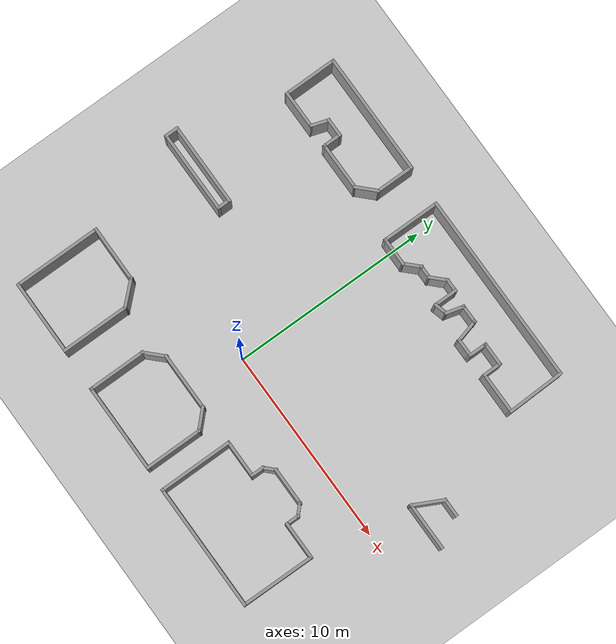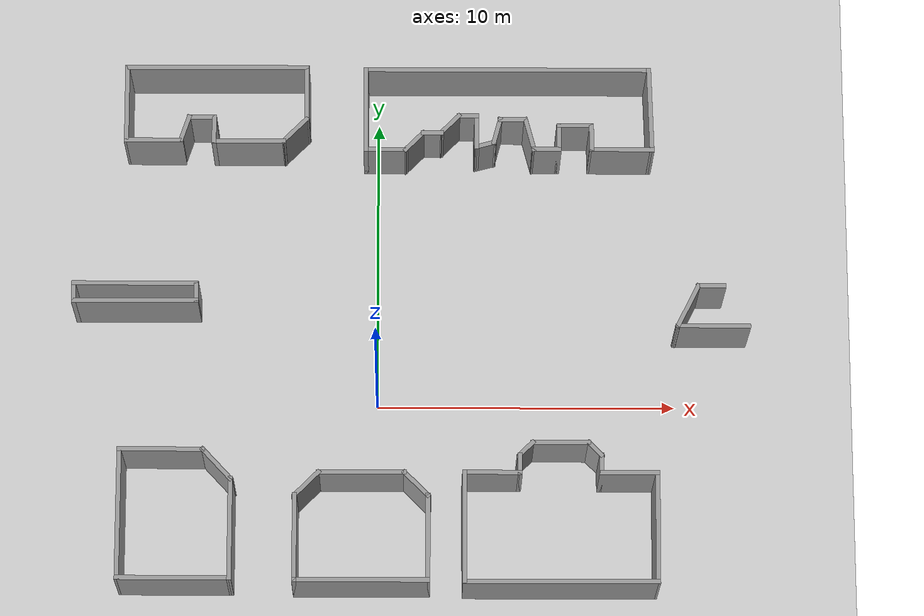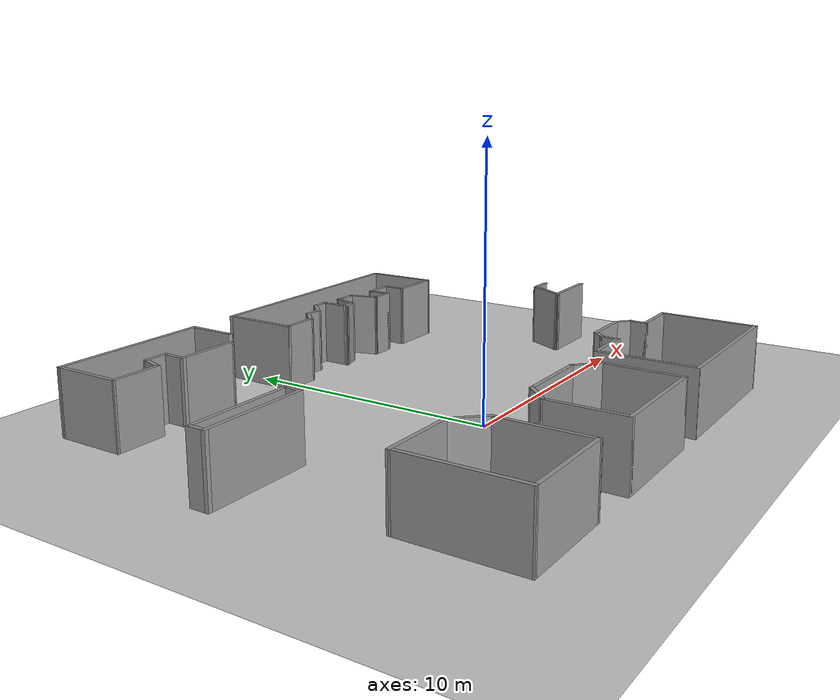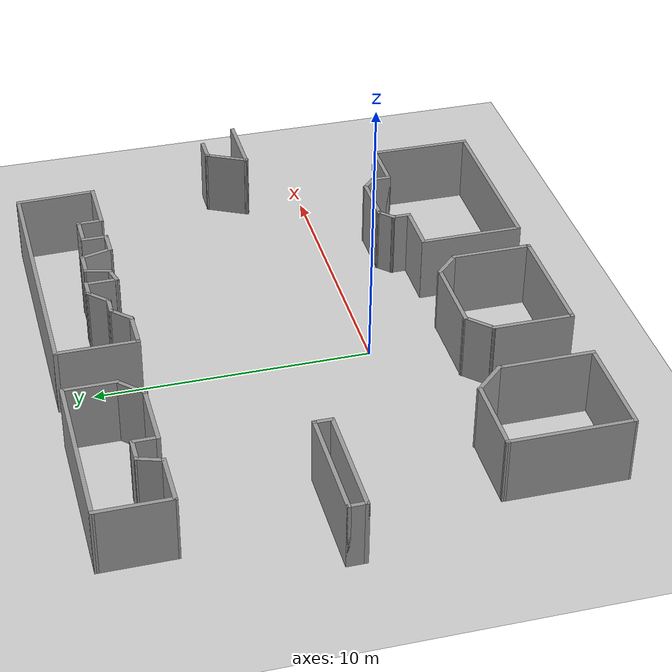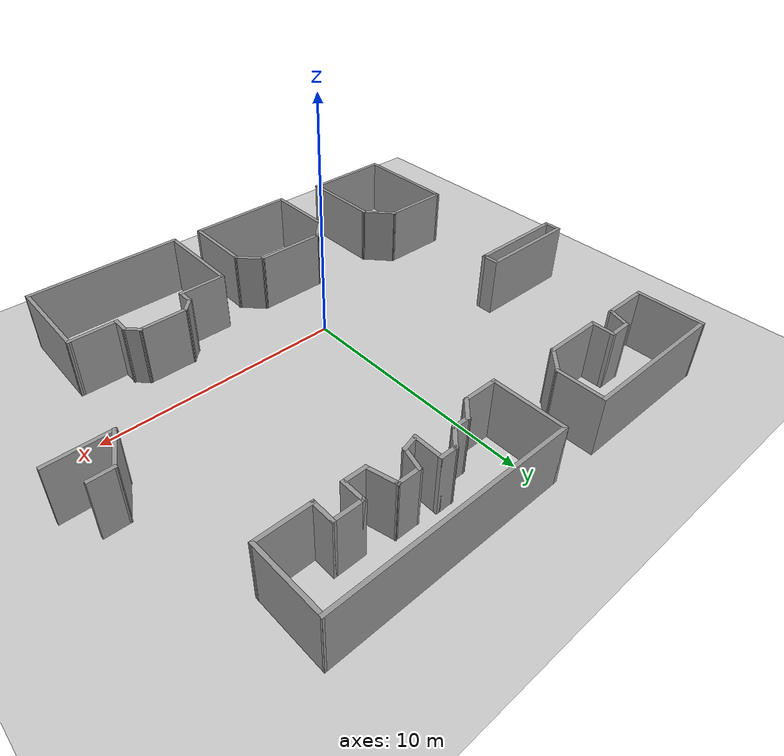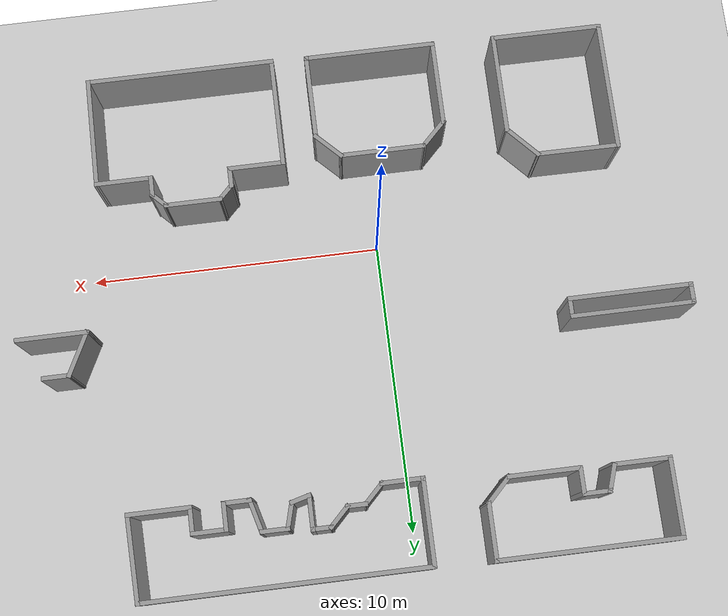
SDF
<sdf version="1.6">
 <world name="default">
  <model name="ground_plane">
   <static>1</static>
   <link name="link">
    <collision name="collision">
     <geometry><plane><normal>0 0 1</normal><size>100 100</size></plane></geometry>
     <surface><friction><ode><mu>100</mu><mu2>50</mu2></ode></friction></surface>
    </collision>
    <visual name="visual">
     <cast_shadows>0</cast_shadows>
     <geometry><plane><normal>0 0 1</normal><size>100 100</size></plane></geometry>
     <material>
      <script><uri>file://media/materials/scripts/gazebo.material</uri><name>Gazebo/Grey</name></script>
     </material>
    </visual>
   </link>
  </model>
  <model name="corridor1">
   <pose>-0.71562 2.39478 0 0 -0 0</pose>
   <link name="Wall_135">
    <collision name="Wall_135_Collision">
     <geometry><box><size>6.25 0.15 2.5</size></box></geometry>
     <pose>0 0 1.25 0 -0 0</pose>
    </collision>
    <visual name="Wall_135_Visual">
     <pose>0 0 1.25 0 -0 0</pose>
     <geometry><box><size>6.25 0.15 2.5</size></box></geometry>
     <material>
      <script><uri>file://media/materials/scripts/gazebo.material</uri><name>Gazebo/Grey</name></script>
      <ambient>1 1 1 1</ambient>
     </material>
     <meta><layer>0</layer></meta>
    </visual>
    <pose>-4.78429 8.90432 0 0 -0 0</pose>
   </link>
   <link name="Wall_138">
    <collision name="Wall_138_Collision">
     <geometry><box><size>2 0.15 2.5</size></box></geometry>
     <pose>0 0 1.25 0 -0 0</pose>
    </collision>
    <visual name="Wall_138_Visual">
     <pose>0 0 1.25 0 -0 0</pose>
     <geometry><box><size>2 0.15 2.5</size></box></geometry>
     <material>
      <script><uri>file://media/materials/scripts/gazebo.material</uri><name>Gazebo/Grey</name></script>
      <ambient>1 1 1 1</ambient>
     </material>
     <meta><layer>0</layer></meta>
    </visual>
    <pose>-1.73429 7.97931 0 0 0 -1.5708</pose>
   </link>
   <link name="Wall_139">
    <collision name="Wall_139_Collision">
     <geometry><box><size>1.25 0.15 2.5</size></box></geometry>
     <pose>0 0 1.25 0 -0 0</pose>
    </collision>
    <visual name="Wall_139_Visual">
     <pose>0 0 1.25 0 -0 0</pose>
     <geometry><box><size>1.25 0.15 2.5</size></box></geometry>
     <material>
      <script><uri>file://media/materials/scripts/gazebo.material</uri><name>Gazebo/Grey</name></script>
      <ambient>1 1 1 1</ambient>
     </material>
     <meta><layer>0</layer></meta>
    </visual>
    <pose>-2.1232 6.66541 0 0 0 -2.35619</pose>
   </link>
   <link name="Wall_140">
    <collision name="Wall_140_Collision">
     <geometry><box><size>2.5 0.15 2.5</size></box></geometry>
     <pose>0 0 1.25 0 -0 0</pose>
    </collision>
    <visual name="Wall_140_Visual">
     <pose>0 0 1.25 0 -0 0</pose>
     <geometry><box><size>2.5 0.15 2.5</size></box></geometry>
     <material>
      <script><uri>file://media/materials/scripts/gazebo.material</uri><name>Gazebo/Grey</name></script>
      <ambient>1 1 1 1</ambient>
     </material>
     <meta><layer>0</layer></meta>
    </visual>
    <pose>-3.68711 6.2765 0 0 -0 3.14159</pose>
   </link>
   <link name="Wall_141">
    <collision name="Wall_141_Collision">
     <geometry><box><size>1 0.15 2.5</size></box></geometry>
     <pose>0 0 1.25 0 -0 0</pose>
    </collision>
    <visual name="Wall_141_Visual">
     <pose>0 0 1.25 0 -0 0</pose>
     <geometry><box><size>1 0.15 2.5</size></box></geometry>
     <material>
      <script><uri>file://media/materials/scripts/gazebo.material</uri><name>Gazebo/Grey</name></script>
      <ambient>1 1 1 1</ambient>
     </material>
     <meta><layer>0</layer></meta>
    </visual>
    <pose>-4.86211 6.7015 0 0 -0 1.5708</pose>
   </link>
   <link name="Wall_142">
    <collision name="Wall_142_Collision">
     <geometry><box><size>1 0.15 2.5</size></box></geometry>
     <pose>0 0 1.25 0 -0 0</pose>
    </collision>
    <visual name="Wall_142_Visual">
     <pose>0 0 1.25 0 -0 0</pose>
     <geometry><box><size>1 0.15 2.5</size></box></geometry>
     <material>
      <script><uri>file://media/materials/scripts/gazebo.material</uri><name>Gazebo/Grey</name></script>
      <ambient>1 1 1 1</ambient>
     </material>
     <meta><layer>0</layer></meta>
    </visual>
    <pose>-5.28711 7.1265 0 0 -0 3.14159</pose>
   </link>
   <link name="Wall_143">
    <collision name="Wall_143_Collision">
     <geometry><box><size>0.989653 0.15 2.5</size></box></geometry>
     <pose>0 0 1.25 0 -0 0</pose>
    </collision>
    <visual name="Wall_143_Visual">
     <pose>0 0 1.25 0 -0 0</pose>
     <geometry><box><size>0.989653 0.15 2.5</size></box></geometry>
     <material>
      <script><uri>file://media/materials/scripts/gazebo.material</uri><name>Gazebo/Grey</name></script>
      <ambient>1 1 1 1</ambient>
     </material>
     <meta><layer>0</layer></meta>
    </visual>
    <pose>-5.84361 6.7278 0 0 0 -1.88939</pose>
   </link>
   <link name="Wall_144">
    <collision name="Wall_144_Collision">
     <geometry><box><size>2 0.15 2.5</size></box></geometry>
     <pose>0 0 1.25 0 -0 0</pose>
    </collision>
    <visual name="Wall_144_Visual">
     <pose>0 0 1.25 0 -0 0</pose>
     <geometry><box><size>2 0.15 2.5</size></box></geometry>
     <material>
      <script><uri>file://media/materials/scripts/gazebo.material</uri><name>Gazebo/Grey</name></script>
      <ambient>1 1 1 1</ambient>
     </material>
     <meta><layer>0</layer></meta>
    </visual>
    <pose>-6.90011 6.3028 0 0 -0 3.14159</pose>
   </link>
   <link name="Wall_146">
    <collision name="Wall_146_Collision">
     <geometry><box><size>2.75153 0.15 2.5</size></box></geometry>
     <pose>0 0 1.25 0 -0 0</pose>
    </collision>
    <visual name="Wall_146_Visual">
     <pose>0 0 1.25 0 -0 0</pose>
     <geometry><box><size>2.75153 0.15 2.5</size></box></geometry>
     <material>
      <script><uri>file://media/materials/scripts/gazebo.material</uri><name>Gazebo/Grey</name></script>
      <ambient>1 1 1 1</ambient>
     </material>
     <meta><layer>0</layer></meta>
    </visual>
    <pose>-7.8297 7.60356 0 0 0 -1.56727</pose>
   </link>
   <link name="Wall_148">
    <collision name="Wall_148_Collision">
     <geometry><box><size>3 0.15 2.5</size></box></geometry>
     <pose>0 0 1.25 0 -0 0</pose>
    </collision>
    <visual name="Wall_148_Visual">
     <pose>0 0 1.25 0 -0 0</pose>
     <geometry><box><size>3 0.15 2.5</size></box></geometry>
     <material>
      <script><uri>file://media/materials/scripts/gazebo.material</uri><name>Gazebo/Grey</name></script>
      <ambient>1 1 1 1</ambient>
     </material>
     <meta><layer>0</layer></meta>
    </visual>
    <pose>0.277223 7.41165 0 0 0 -1.5708</pose>
   </link>
   <link name="Wall_149">
    <collision name="Wall_149_Collision">
     <geometry><box><size>1.5 0.15 2.5</size></box></geometry>
     <pose>0 0 1.25 0 -0 0</pose>
    </collision>
    <visual name="Wall_149_Visual">
     <pose>0 0 1.25 0 -0 0</pose>
     <geometry><box><size>1.5 0.15 2.5</size></box></geometry>
     <material>
      <script><uri>file://media/materials/scripts/gazebo.material</uri><name>Gazebo/Grey</name></script>
      <ambient>1 1 1 1</ambient>
     </material>
     <meta><layer>0</layer></meta>
    </visual>
    <pose>0.952223 5.98665 0 0 -0 0</pose>
   </link>
   <link name="Wall_150">
    <collision name="Wall_150_Collision">
     <geometry><box><size>1 0.15 2.5</size></box></geometry>
     <pose>0 0 1.25 0 -0 0</pose>
    </collision>
    <visual name="Wall_150_Visual">
     <pose>0 0 1.25 0 -0 0</pose>
     <geometry><box><size>1 0.15 2.5</size></box></geometry>
     <material>
      <script><uri>file://media/materials/scripts/gazebo.material</uri><name>Gazebo/Grey</name></script>
      <ambient>1 1 1 1</ambient>
     </material>
     <meta><layer>0</layer></meta>
    </visual>
    <pose>1.92774 6.28718 0 0 -0 0.785398</pose>
   </link>
   <link name="Wall_151">
    <collision name="Wall_151_Collision">
     <geometry><box><size>0.75 0.15 2.5</size></box></geometry>
     <pose>0 0 1.25 0 -0 0</pose>
    </collision>
    <visual name="Wall_151_Visual">
     <pose>0 0 1.25 0 -0 0</pose>
     <geometry><box><size>0.75 0.15 2.5</size></box></geometry>
     <material>
      <script><uri>file://media/materials/scripts/gazebo.material</uri><name>Gazebo/Grey</name></script>
      <ambient>1 1 1 1</ambient>
     </material>
     <meta><layer>0</layer></meta>
    </visual>
    <pose>2.52826 6.5877 0 0 -0 0</pose>
   </link>
   <link name="Wall_152">
    <collision name="Wall_152_Collision">
     <geometry><box><size>1 0.15 2.5</size></box></geometry>
     <pose>0 0 1.25 0 -0 0</pose>
    </collision>
    <visual name="Wall_152_Visual">
     <pose>0 0 1.25 0 -0 0</pose>
     <geometry><box><size>1 0.15 2.5</size></box></geometry>
     <material>
      <script><uri>file://media/materials/scripts/gazebo.material</uri><name>Gazebo/Grey</name></script>
      <ambient>1 1 1 1</ambient>
     </material>
     <meta><layer>0</layer></meta>
    </visual>
    <pose>3.12878 6.88822 0 0 -0 0.785398</pose>
   </link>
   <link name="Wall_153">
    <collision name="Wall_153_Collision">
     <geometry><box><size>0.75 0.15 2.5</size></box></geometry>
     <pose>0 0 1.25 0 -0 0</pose>
    </collision>
    <visual name="Wall_153_Visual">
     <pose>0 0 1.25 0 -0 0</pose>
     <geometry><box><size>0.75 0.15 2.5</size></box></geometry>
     <material>
      <script><uri>file://media/materials/scripts/gazebo.material</uri><name>Gazebo/Grey</name></script>
      <ambient>1 1 1 1</ambient>
     </material>
     <meta><layer>0</layer></meta>
    </visual>
    <pose>3.72931 7.18874 0 0 -0 0</pose>
   </link>
   <link name="Wall_154">
    <collision name="Wall_154_Collision">
     <geometry><box><size>1.25 0.15 2.5</size></box></geometry>
     <pose>0 0 1.25 0 -0 0</pose>
    </collision>
    <visual name="Wall_154_Visual">
     <pose>0 0 1.25 0 -0 0</pose>
     <geometry><box><size>1.25 0.15 2.5</size></box></geometry>
     <material>
      <script><uri>file://media/materials/scripts/gazebo.material</uri><name>Gazebo/Grey</name></script>
      <ambient>1 1 1 1</ambient>
     </material>
     <meta><layer>0</layer></meta>
    </visual>
    <pose>4.0293 6.63874 0 0 0 -1.5708</pose>
   </link>
   <link name="Wall_155">
    <collision name="Wall_155_Collision">
     <geometry><box><size>0.75 0.15 2.5</size></box></geometry>
     <pose>0 0 1.25 0 -0 0</pose>
    </collision>
    <visual name="Wall_155_Visual">
     <pose>0 0 1.25 0 -0 0</pose>
     <geometry><box><size>0.75 0.15 2.5</size></box></geometry>
     <material>
      <script><uri>file://media/materials/scripts/gazebo.material</uri><name>Gazebo/Grey</name></script>
      <ambient>1 1 1 1</ambient>
     </material>
     <meta><layer>0</layer></meta>
    </visual>
    <pose>4.31908 6.16638 0 0 -0 0.261799</pose>
   </link>
   <link name="Wall_156">
    <collision name="Wall_156_Collision">
     <geometry><box><size>1 0.15 2.5</size></box></geometry>
     <pose>0 0 1.25 0 -0 0</pose>
    </collision>
    <visual name="Wall_156_Visual">
     <pose>0 0 1.25 0 -0 0</pose>
     <geometry><box><size>1 0.15 2.5</size></box></geometry>
     <material>
      <script><uri>file://media/materials/scripts/gazebo.material</uri><name>Gazebo/Grey</name></script>
      <ambient>1 1 1 1</ambient>
     </material>
     <meta><layer>0</layer></meta>
    </visual>
    <pose>4.71886 6.65454 0 0 -0 1.309</pose>
   </link>
   <link name="Wall_157">
    <collision name="Wall_157_Collision">
     <geometry><box><size>1 0.15 2.5</size></box></geometry>
     <pose>0 0 1.25 0 -0 0</pose>
    </collision>
    <visual name="Wall_157_Visual">
     <pose>0 0 1.25 0 -0 0</pose>
     <geometry><box><size>1 0.15 2.5</size></box></geometry>
     <material>
      <script><uri>file://media/materials/scripts/gazebo.material</uri><name>Gazebo/Grey</name></script>
      <ambient>1 1 1 1</ambient>
     </material>
     <meta><layer>0</layer></meta>
    </visual>
    <pose>5.25386 7.06506 0 0 -0 0</pose>
   </link>
   <link name="Wall_158">
    <collision name="Wall_158_Collision">
     <geometry><box><size>1.25 0.15 2.5</size></box></geometry>
     <pose>0 0 1.25 0 -0 0</pose>
    </collision>
    <visual name="Wall_158_Visual">
     <pose>0 0 1.25 0 -0 0</pose>
     <geometry><box><size>1.25 0.15 2.5</size></box></geometry>
     <material>
      <script><uri>file://media/materials/scripts/gazebo.material</uri><name>Gazebo/Grey</name></script>
      <ambient>1 1 1 1</ambient>
     </material>
     <meta><layer>0</layer></meta>
    </visual>
    <pose>5.82121 6.53381 0 0 0 -1.309</pose>
   </link>
   <link name="Wall_159">
    <collision name="Wall_159_Collision">
     <geometry><box><size>1 0.15 2.5</size></box></geometry>
     <pose>0 0 1.25 0 -0 0</pose>
    </collision>
    <visual name="Wall_159_Visual">
     <pose>0 0 1.25 0 -0 0</pose>
     <geometry><box><size>1 0.15 2.5</size></box></geometry>
     <material>
      <script><uri>file://media/materials/scripts/gazebo.material</uri><name>Gazebo/Grey</name></script>
      <ambient>1 1 1 1</ambient>
     </material>
     <meta><layer>0</layer></meta>
    </visual>
    <pose>6.38856 6.00255 0 0 -0 0</pose>
   </link>
   <link name="Wall_160">
    <collision name="Wall_160_Collision">
     <geometry><box><size>1 0.15 2.5</size></box></geometry>
     <pose>0 0 1.25 0 -0 0</pose>
    </collision>
    <visual name="Wall_160_Visual">
     <pose>0 0 1.25 0 -0 0</pose>
     <geometry><box><size>1 0.15 2.5</size></box></geometry>
     <material>
      <script><uri>file://media/materials/scripts/gazebo.material</uri><name>Gazebo/Grey</name></script>
      <ambient>1 1 1 1</ambient>
     </material>
     <meta><layer>0</layer></meta>
    </visual>
    <pose>6.81356 6.42755 0 0 -0 1.5708</pose>
   </link>
   <link name="Wall_161">
    <collision name="Wall_161_Collision">
     <geometry><box><size>1.25 0.15 2.5</size></box></geometry>
     <pose>0 0 1.25 0 -0 0</pose>
    </collision>
    <visual name="Wall_161_Visual">
     <pose>0 0 1.25 0 -0 0</pose>
     <geometry><box><size>1.25 0.15 2.5</size></box></geometry>
     <material>
      <script><uri>file://media/materials/scripts/gazebo.material</uri><name>Gazebo/Grey</name></script>
      <ambient>1 1 1 1</ambient>
     </material>
     <meta><layer>0</layer></meta>
    </visual>
    <pose>7.36356 6.85255 0 0 -0 0</pose>
   </link>
   <link name="Wall_162">
    <collision name="Wall_162_Collision">
     <geometry><box><size>1 0.15 2.5</size></box></geometry>
     <pose>0 0 1.25 0 -0 0</pose>
    </collision>
    <visual name="Wall_162_Visual">
     <pose>0 0 1.25 0 -0 0</pose>
     <geometry><box><size>1 0.15 2.5</size></box></geometry>
     <material>
      <script><uri>file://media/materials/scripts/gazebo.material</uri><name>Gazebo/Grey</name></script>
      <ambient>1 1 1 1</ambient>
     </material>
     <meta><layer>0</layer></meta>
    </visual>
    <pose>7.91356 6.42755 0 0 0 -1.5708</pose>
   </link>
   <link name="Wall_167">
    <collision name="Wall_167_Collision">
     <geometry><box><size>9.75 0.15 2.5</size></box></geometry>
     <pose>0 0 1.25 0 -0 0</pose>
    </collision>
    <visual name="Wall_167_Visual">
     <pose>0 0 1.25 0 -0 0</pose>
     <geometry><box><size>9.75 0.15 2.5</size></box></geometry>
     <material>
      <script><uri>file://media/materials/scripts/gazebo.material</uri><name>Gazebo/Grey</name></script>
      <ambient>1 1 1 1</ambient>
     </material>
     <meta><layer>0</layer></meta>
    </visual>
    <pose>5.07722 8.83665 0 0 -0 0</pose>
   </link>
   <link name="Wall_169">
    <collision name="Wall_169_Collision">
     <geometry><box><size>2.18935 0.15 2.5</size></box></geometry>
     <pose>0 0 1.25 0 -0 0</pose>
    </collision>
    <visual name="Wall_169_Visual">
     <pose>0 0 1.25 0 -0 0</pose>
     <geometry><box><size>2.18935 0.15 2.5</size></box></geometry>
     <material>
      <script><uri>file://media/materials/scripts/gazebo.material</uri><name>Gazebo/Grey</name></script>
      <ambient>1 1 1 1</ambient>
     </material>
     <meta><layer>0</layer></meta>
    </visual>
    <pose>8.93323 6.00105 0 0 0 -0.001463</pose>
   </link>
   <link name="Wall_176">
    <collision name="Wall_176_Collision">
     <geometry><box><size>2.9881 0.15 2.5</size></box></geometry>
     <pose>0 0 1.25 0 -0 0</pose>
    </collision>
    <visual name="Wall_176_Visual">
     <pose>0 0 1.25 0 -0 0</pose>
     <geometry><box><size>2.9881 0.15 2.5</size></box></geometry>
     <material>
      <script><uri>file://media/materials/scripts/gazebo.material</uri><name>Gazebo/Grey</name></script>
      <ambient>1 1 1 1</ambient>
     </material>
     <meta><layer>0</layer></meta>
    </visual>
    <pose>9.91506 7.41811 0 0 -0 1.59746</pose>
   </link>
   <link name="Wall_283">
    <collision name="Wall_283_Collision">
     <geometry><box><size>1 0.15 2.5</size></box></geometry>
     <pose>0 0 1.25 0 -0 0</pose>
    </collision>
    <visual name="Wall_283_Visual">
     <pose>0 0 1.25 0 -0 0</pose>
     <geometry><box><size>1 0.15 2.5</size></box></geometry>
     <material>
      <script><uri>file://media/materials/scripts/gazebo.material</uri><name>Gazebo/Grey</name></script>
      <ambient>1 1 1 1</ambient>
     </material>
     <meta><layer>0</layer></meta>
    </visual>
    <pose>11.8715 1.21071 0 0 -0 0</pose>
   </link>
   <link name="Wall_285">
    <collision name="Wall_285_Collision">
     <geometry><box><size>2.5 0.15 2.5</size></box></geometry>
     <pose>0 0 1.25 0 -0 0</pose>
    </collision>
    <visual name="Wall_285_Visual">
     <pose>0 0 1.25 0 -0 0</pose>
     <geometry><box><size>2.5 0.15 2.5</size></box></geometry>
     <material>
      <script><uri>file://media/materials/scripts/gazebo.material</uri><name>Gazebo/Grey</name></script>
      <ambient>1 1 1 1</ambient>
     </material>
     <meta><layer>0</layer></meta>
    </visual>
    <pose>11.9215 -0.174928 0 0 -0 3.14159</pose>
   </link>
   <link name="Wall_286">
    <collision name="Wall_286_Collision">
     <geometry><box><size>1.70242 0.15 2.5</size></box></geometry>
     <pose>0 0 1.25 0 -0 0</pose>
    </collision>
    <visual name="Wall_286_Visual">
     <pose>0 0 1.25 0 -0 0</pose>
     <geometry><box><size>1.70242 0.15 2.5</size></box></geometry>
     <material>
      <script><uri>file://media/materials/scripts/gazebo.material</uri><name>Gazebo/Grey</name></script>
      <ambient>1 1 1 1</ambient>
     </material>
     <meta><layer>0</layer></meta>
    </visual>
    <pose>11.0965 0.517892 0 0 -0 1.10301</pose>
   </link>
   <link name="Wall_288">
    <collision name="Wall_288_Collision">
     <geometry><box><size>4.25 0.15 2.5</size></box></geometry>
     <pose>0 0 1.25 0 -0 0</pose>
    </collision>
    <visual name="Wall_288_Visual">
     <pose>0 0 1.25 0 -0 0</pose>
     <geometry><box><size>4.25 0.15 2.5</size></box></geometry>
     <material>
      <script><uri>file://media/materials/scripts/gazebo.material</uri><name>Gazebo/Grey</name></script>
      <ambient>1 1 1 1</ambient>
     </material>
     <meta><layer>0</layer></meta>
    </visual>
    <pose>-7.42523 1.26302 0 0 -0 0</pose>
   </link>
   <link name="Wall_289">
    <collision name="Wall_289_Collision">
     <geometry><box><size>0.75 0.15 2.5</size></box></geometry>
     <pose>0 0 1.25 0 -0 0</pose>
    </collision>
    <visual name="Wall_289_Visual">
     <pose>0 0 1.25 0 -0 0</pose>
     <geometry><box><size>0.75 0.15 2.5</size></box></geometry>
     <material>
      <script><uri>file://media/materials/scripts/gazebo.material</uri><name>Gazebo/Grey</name></script>
      <ambient>1 1 1 1</ambient>
     </material>
     <meta><layer>0</layer></meta>
    </visual>
    <pose>-5.37523 0.963017 0 0 0 -1.5708</pose>
   </link>
   <link name="Wall_292">
    <collision name="Wall_292_Collision">
     <geometry><box><size>4.25 0.15 2.5</size></box></geometry>
     <pose>0 0 1.25 0 -0 0</pose>
    </collision>
    <visual name="Wall_292_Visual">
     <pose>0 0 1.25 0 -0 0</pose>
     <geometry><box><size>4.25 0.15 2.5</size></box></geometry>
     <material>
      <script><uri>file://media/materials/scripts/gazebo.material</uri><name>Gazebo/Grey</name></script>
      <ambient>1 1 1 1</ambient>
     </material>
     <meta><layer>0</layer></meta>
    </visual>
    <pose>-7.42523 0.663017 0 0 -0 3.14159</pose>
   </link>
   <link name="Wall_293">
    <collision name="Wall_293_Collision">
     <geometry><box><size>0.75 0.15 2.5</size></box></geometry>
     <pose>0 0 1.25 0 -0 0</pose>
    </collision>
    <visual name="Wall_293_Visual">
     <pose>0 0 1.25 0 -0 0</pose>
     <geometry><box><size>0.75 0.15 2.5</size></box></geometry>
     <material>
      <script><uri>file://media/materials/scripts/gazebo.material</uri><name>Gazebo/Grey</name></script>
      <ambient>1 1 1 1</ambient>
     </material>
     <meta><layer>0</layer></meta>
    </visual>
    <pose>-9.47523 0.963017 0 0 -0 1.5708</pose>
   </link>
   <link name="Wall_39">
    <collision name="Wall_39_Collision">
     <geometry><box><size>3 0.15 2.5</size></box></geometry>
     <pose>0 0 1.25 0 -0 0</pose>
    </collision>
    <visual name="Wall_39_Visual">
     <pose>0 0 1.25 0 -0 0</pose>
     <geometry><box><size>3 0.15 2.5</size></box></geometry>
     <material>
      <script><uri>file://media/materials/scripts/gazebo.material</uri><name>Gazebo/Grey</name></script>
      <ambient>1 1 1 1</ambient>
     </material>
     <meta><layer>0</layer></meta>
    </visual>
    <pose>0.192684 -5.22842 0 0 -0 0</pose>
   </link>
   <link name="Wall_40">
    <collision name="Wall_40_Collision">
     <geometry><box><size>1.25 0.15 2.5</size></box></geometry>
     <pose>0 0 1.25 0 -0 0</pose>
    </collision>
    <visual name="Wall_40_Visual">
     <pose>0 0 1.25 0 -0 0</pose>
     <geometry><box><size>1.25 0.15 2.5</size></box></geometry>
     <material>
      <script><uri>file://media/materials/scripts/gazebo.material</uri><name>Gazebo/Grey</name></script>
      <ambient>1 1 1 1</ambient>
     </material>
     <meta><layer>0</layer></meta>
    </visual>
    <pose>2.00659 -5.61733 0 0 0 -0.785398</pose>
   </link>
   <link name="Wall_41">
    <collision name="Wall_41_Collision">
     <geometry><box><size>3 0.15 2.5</size></box></geometry>
     <pose>0 0 1.25 0 -0 0</pose>
    </collision>
    <visual name="Wall_41_Visual">
     <pose>0 0 1.25 0 -0 0</pose>
     <geometry><box><size>3 0.15 2.5</size></box></geometry>
     <material>
      <script><uri>file://media/materials/scripts/gazebo.material</uri><name>Gazebo/Grey</name></script>
      <ambient>1 1 1 1</ambient>
     </material>
     <meta><layer>0</layer></meta>
    </visual>
    <pose>2.3955 -7.43124 0 0 0 -1.5708</pose>
   </link>
   <link name="Wall_43">
    <collision name="Wall_43_Collision">
     <geometry><box><size>1.25 0.15 2.5</size></box></geometry>
     <pose>0 0 1.25 0 -0 0</pose>
    </collision>
    <visual name="Wall_43_Visual">
     <pose>0 0 1.25 0 -0 0</pose>
     <geometry><box><size>1.25 0.15 2.5</size></box></geometry>
     <material>
      <script><uri>file://media/materials/scripts/gazebo.material</uri><name>Gazebo/Grey</name></script>
      <ambient>1 1 1 1</ambient>
     </material>
     <meta><layer>0</layer></meta>
    </visual>
    <pose>-1.62122 -5.61733 0 0 0 -2.35619</pose>
   </link>
   <link name="Wall_44">
    <collision name="Wall_44_Collision">
     <geometry><box><size>3 0.15 2.5</size></box></geometry>
     <pose>0 0 1.25 0 -0 0</pose>
    </collision>
    <visual name="Wall_44_Visual">
     <pose>0 0 1.25 0 -0 0</pose>
     <geometry><box><size>3 0.15 2.5</size></box></geometry>
     <material>
      <script><uri>file://media/materials/scripts/gazebo.material</uri><name>Gazebo/Grey</name></script>
      <ambient>1 1 1 1</ambient>
     </material>
     <meta><layer>0</layer></meta>
    </visual>
    <pose>-2.01013 -7.43124 0 0 0 -1.5708</pose>
   </link>
   <link name="Wall_45">
    <collision name="Wall_45_Collision">
     <geometry><box><size>4.55563 0.15 2.5</size></box></geometry>
     <pose>0 0 1.25 0 -0 0</pose>
    </collision>
    <visual name="Wall_45_Visual">
     <pose>0 0 1.25 0 -0 0</pose>
     <geometry><box><size>4.55563 0.15 2.5</size></box></geometry>
     <material>
      <script><uri>file://media/materials/scripts/gazebo.material</uri><name>Gazebo/Grey</name></script>
      <ambient>1 1 1 1</ambient>
     </material>
     <meta><layer>0</layer></meta>
    </visual>
    <pose>0.192684 -8.85624 0 0 -0 0</pose>
   </link>
   <link name="Wall_63">
    <collision name="Wall_63_Collision">
     <geometry><box><size>1.97744 0.15 2.5</size></box></geometry>
     <pose>0 0 1.25 0 -0 0</pose>
    </collision>
    <visual name="Wall_63_Visual">
     <pose>0 0 1.25 0 -0 0</pose>
     <geometry><box><size>1.97744 0.15 2.5</size></box></geometry>
     <material>
      <script><uri>file://media/materials/scripts/gazebo.material</uri><name>Gazebo/Grey</name></script>
      <ambient>1 1 1 1</ambient>
     </material>
     <meta><layer>0</layer></meta>
    </visual>
    <pose>4.53084 -5.22175 0 0 -0 0</pose>
   </link>
   <link name="Wall_64">
    <collision name="Wall_64_Collision">
     <geometry><box><size>0.75 0.15 2.5</size></box></geometry>
     <pose>0 0 1.25 0 -0 0</pose>
    </collision>
    <visual name="Wall_64_Visual">
     <pose>0 0 1.25 0 -0 0</pose>
     <geometry><box><size>0.75 0.15 2.5</size></box></geometry>
     <material>
      <script><uri>file://media/materials/scripts/gazebo.material</uri><name>Gazebo/Grey</name></script>
      <ambient>1 1 1 1</ambient>
     </material>
     <meta><layer>0</layer></meta>
    </visual>
    <pose>5.44456 -4.92175 0 0 -0 1.5708</pose>
   </link>
   <link name="Wall_65">
    <collision name="Wall_65_Collision">
     <geometry><box><size>0.75 0.15 2.5</size></box></geometry>
     <pose>0 0 1.25 0 -0 0</pose>
    </collision>
    <visual name="Wall_65_Visual">
     <pose>0 0 1.25 0 -0 0</pose>
     <geometry><box><size>0.75 0.15 2.5</size></box></geometry>
     <material>
      <script><uri>file://media/materials/scripts/gazebo.material</uri><name>Gazebo/Grey</name></script>
      <ambient>1 1 1 1</ambient>
     </material>
     <meta><layer>0</layer></meta>
    </visual>
    <pose>5.65669 -4.40962 0 0 -0 0.785398</pose>
   </link>
   <link name="Wall_66">
    <collision name="Wall_66_Collision">
     <geometry><box><size>2 0.15 2.5</size></box></geometry>
     <pose>0 0 1.25 0 -0 0</pose>
    </collision>
    <visual name="Wall_66_Visual">
     <pose>0 0 1.25 0 -0 0</pose>
     <geometry><box><size>2 0.15 2.5</size></box></geometry>
     <material>
      <script><uri>file://media/materials/scripts/gazebo.material</uri><name>Gazebo/Grey</name></script>
      <ambient>1 1 1 1</ambient>
     </material>
     <meta><layer>0</layer></meta>
    </visual>
    <pose>6.79383 -4.19749 0 0 -0 0</pose>
   </link>
   <link name="Wall_67">
    <collision name="Wall_67_Collision">
     <geometry><box><size>0.75 0.15 2.5</size></box></geometry>
     <pose>0 0 1.25 0 -0 0</pose>
    </collision>
    <visual name="Wall_67_Visual">
     <pose>0 0 1.25 0 -0 0</pose>
     <geometry><box><size>0.75 0.15 2.5</size></box></geometry>
     <material>
      <script><uri>file://media/materials/scripts/gazebo.material</uri><name>Gazebo/Grey</name></script>
      <ambient>1 1 1 1</ambient>
     </material>
     <meta><layer>0</layer></meta>
    </visual>
    <pose>7.93096 -4.40962 0 0 0 -0.785398</pose>
   </link>
   <link name="Wall_68">
    <collision name="Wall_68_Collision">
     <geometry><box><size>0.75 0.15 2.5</size></box></geometry>
     <pose>0 0 1.25 0 -0 0</pose>
    </collision>
    <visual name="Wall_68_Visual">
     <pose>0 0 1.25 0 -0 0</pose>
     <geometry><box><size>0.75 0.15 2.5</size></box></geometry>
     <material>
      <script><uri>file://media/materials/scripts/gazebo.material</uri><name>Gazebo/Grey</name></script>
      <ambient>1 1 1 1</ambient>
     </material>
     <meta><layer>0</layer></meta>
    </visual>
    <pose>8.14309 -4.92175 0 0 0 -1.5708</pose>
   </link>
   <link name="Wall_69">
    <collision name="Wall_69_Collision">
     <geometry><box><size>2 0.15 2.5</size></box></geometry>
     <pose>0 0 1.25 0 -0 0</pose>
    </collision>
    <visual name="Wall_69_Visual">
     <pose>0 0 1.25 0 -0 0</pose>
     <geometry><box><size>2 0.15 2.5</size></box></geometry>
     <material>
      <script><uri>file://media/materials/scripts/gazebo.material</uri><name>Gazebo/Grey</name></script>
      <ambient>1 1 1 1</ambient>
     </material>
     <meta><layer>0</layer></meta>
    </visual>
    <pose>9.06809 -5.22175 0 0 -0 0</pose>
   </link>
   <link name="Wall_70">
    <collision name="Wall_70_Collision">
     <geometry><box><size>3.82528 0.15 2.5</size></box></geometry>
     <pose>0 0 1.25 0 -0 0</pose>
    </collision>
    <visual name="Wall_70_Visual">
     <pose>0 0 1.25 0 -0 0</pose>
     <geometry><box><size>3.82528 0.15 2.5</size></box></geometry>
     <material>
      <script><uri>file://media/materials/scripts/gazebo.material</uri><name>Gazebo/Grey</name></script>
      <ambient>1 1 1 1</ambient>
     </material>
     <meta><layer>0</layer></meta>
    </visual>
    <pose>9.9801 -7.05935 0 0 0 -1.57786</pose>
   </link>
   <link name="Wall_71">
    <collision name="Wall_71_Collision">
     <geometry><box><size>6.5 0.15 2.5</size></box></geometry>
     <pose>0 0 1.25 0 -0 0</pose>
    </collision>
    <visual name="Wall_71_Visual">
     <pose>0 0 1.25 0 -0 0</pose>
     <geometry><box><size>6.5 0.15 2.5</size></box></geometry>
     <material>
      <script><uri>file://media/materials/scripts/gazebo.material</uri><name>Gazebo/Grey</name></script>
      <ambient>1 1 1 1</ambient>
     </material>
     <meta><layer>0</layer></meta>
    </visual>
    <pose>6.79212 -8.89694 0 0 -0 3.14159</pose>
   </link>
   <link name="Wall_72">
    <collision name="Wall_72_Collision">
     <geometry><box><size>3.81767 0.15 2.5</size></box></geometry>
     <pose>0 0 1.25 0 -0 0</pose>
    </collision>
    <visual name="Wall_72_Visual">
     <pose>0 0 1.25 0 -0 0</pose>
     <geometry><box><size>3.81767 0.15 2.5</size></box></geometry>
     <material>
      <script><uri>file://media/materials/scripts/gazebo.material</uri><name>Gazebo/Grey</name></script>
      <ambient>1 1 1 1</ambient>
     </material>
     <meta><layer>0</layer></meta>
    </visual>
    <pose>3.6096 -7.05559 0 0 -0 1.5708</pose>
   </link>
   <link name="Wall_74">
    <collision name="Wall_74_Collision">
     <geometry><box><size>1.51599 0.15 2.5</size></box></geometry>
     <pose>0 0 1.25 0 -0 0</pose>
    </collision>
    <visual name="Wall_74_Visual">
     <pose>0 0 1.25 0 -0 0</pose>
     <geometry><box><size>1.51599 0.15 2.5</size></box></geometry>
     <material>
      <script><uri>file://media/materials/scripts/gazebo.material</uri><name>Gazebo/Grey</name></script>
      <ambient>1 1 1 1</ambient>
     </material>
     <meta><layer>0</layer></meta>
    </visual>
    <pose>-4.60499 -4.95428 0 0 -0 2.32024</pose>
   </link>
   <link name="Wall_75">
    <collision name="Wall_75_Collision">
     <geometry><box><size>2.90548 0.15 2.5</size></box></geometry>
     <pose>0 0 1.25 0 -0 0</pose>
    </collision>
    <visual name="Wall_75_Visual">
     <pose>0 0 1.25 0 -0 0</pose>
     <geometry><box><size>2.90548 0.15 2.5</size></box></geometry>
     <material>
      <script><uri>file://media/materials/scripts/gazebo.material</uri><name>Gazebo/Grey</name></script>
      <ambient>1 1 1 1</ambient>
     </material>
     <meta><layer>0</layer></meta>
    </visual>
    <pose>-6.45658 -4.45428 0 0 -0 3.13535</pose>
   </link>
   <link name="Wall_76">
    <collision name="Wall_76_Collision">
     <geometry><box><size>4.5 0.15 2.5</size></box></geometry>
     <pose>0 0 1.25 0 -0 0</pose>
    </collision>
    <visual name="Wall_76_Visual">
     <pose>0 0 1.25 0 -0 0</pose>
     <geometry><box><size>4.5 0.15 2.5</size></box></geometry>
     <material>
      <script><uri>file://media/materials/scripts/gazebo.material</uri><name>Gazebo/Grey</name></script>
      <ambient>1 1 1 1</ambient>
     </material>
     <meta><layer>0</layer></meta>
    </visual>
    <pose>-7.83429 -6.62069 0 0 0 -1.5708</pose>
   </link>
   <link name="Wall_77">
    <collision name="Wall_77_Collision">
     <geometry><box><size>3.83599 0.15 2.5</size></box></geometry>
     <pose>0 0 1.25 0 -0 0</pose>
    </collision>
    <visual name="Wall_77_Visual">
     <pose>0 0 1.25 0 -0 0</pose>
     <geometry><box><size>3.83599 0.15 2.5</size></box></geometry>
     <material>
      <script><uri>file://media/materials/scripts/gazebo.material</uri><name>Gazebo/Grey</name></script>
      <ambient>1 1 1 1</ambient>
     </material>
     <meta><layer>0</layer></meta>
    </visual>
    <pose>-5.9913 -8.79998 0 0 0 -0.002333</pose>
   </link>
   <link name="Wall_78">
    <collision name="Wall_78_Collision">
     <geometry><box><size>3.5 0.15 2.5</size></box></geometry>
     <pose>0 0 1.25 0 -0 0</pose>
    </collision>
    <visual name="Wall_78_Visual">
     <pose>0 0 1.25 0 -0 0</pose>
     <geometry><box><size>3.5 0.15 2.5</size></box></geometry>
     <material>
      <script><uri>file://media/materials/scripts/gazebo.material</uri><name>Gazebo/Grey</name></script>
      <ambient>1 1 1 1</ambient>
     </material>
     <meta><layer>0</layer></meta>
    </visual>
    <pose>-4.13971 -7.12928 0 0 -0 1.5708</pose>
   </link>
   <static>1</static>
  </model>
 </world>
</sdf>
